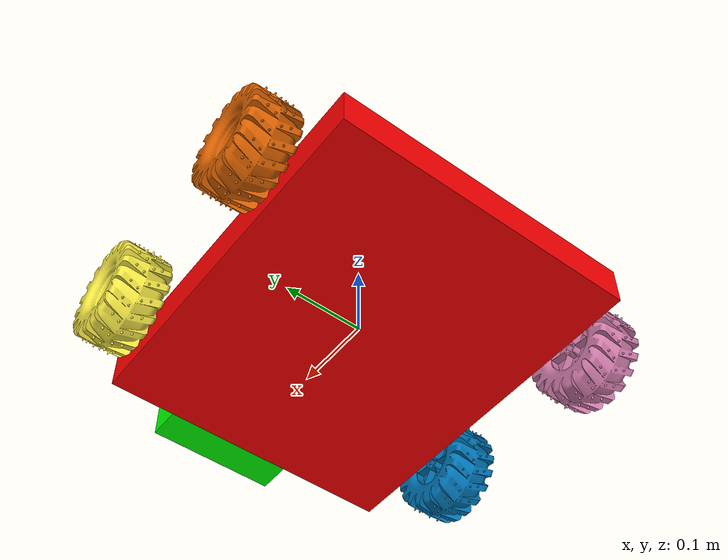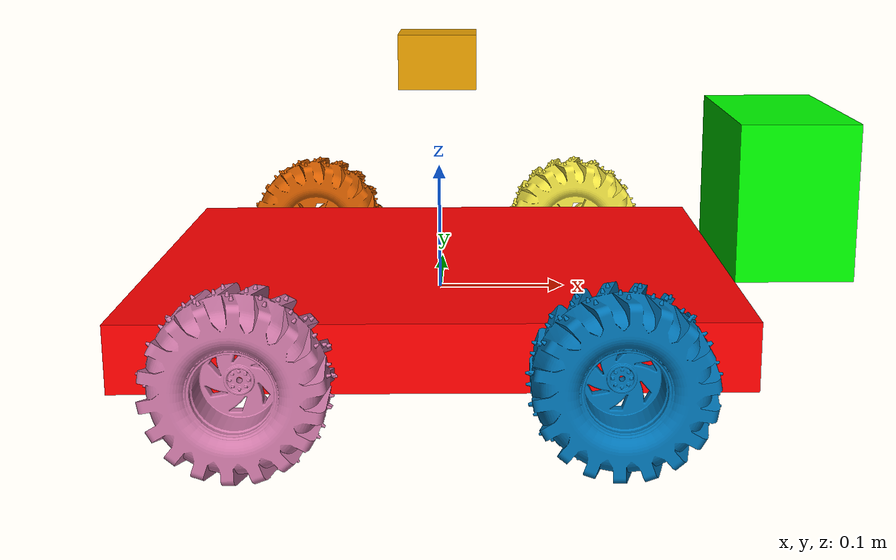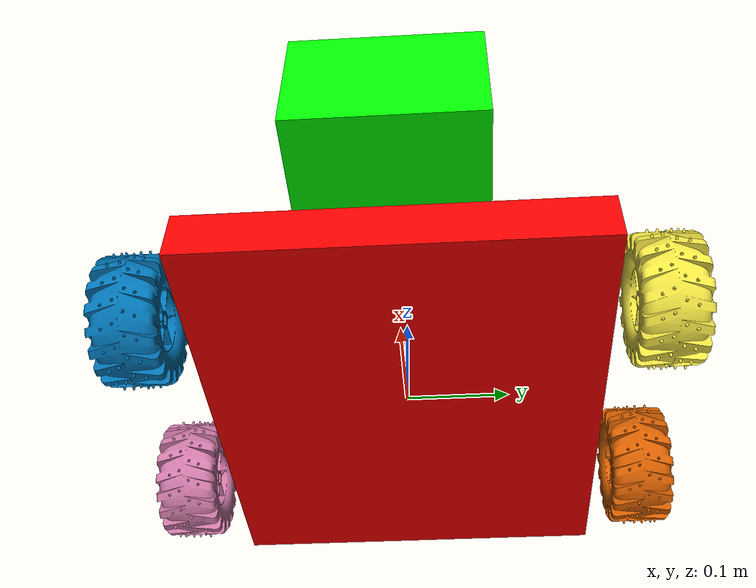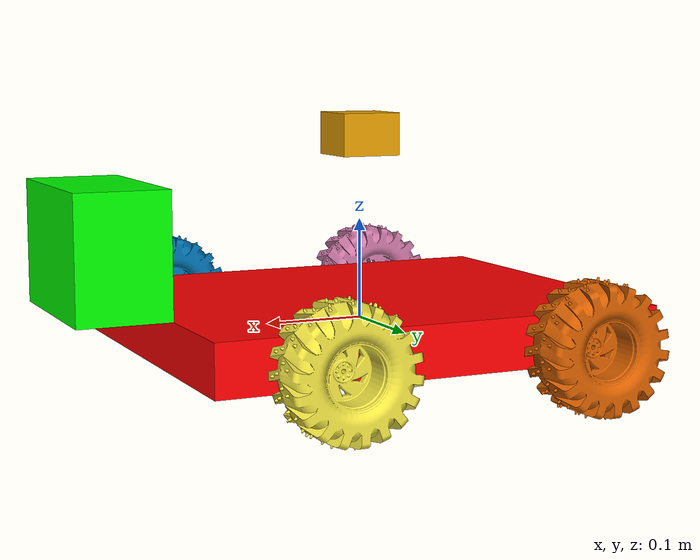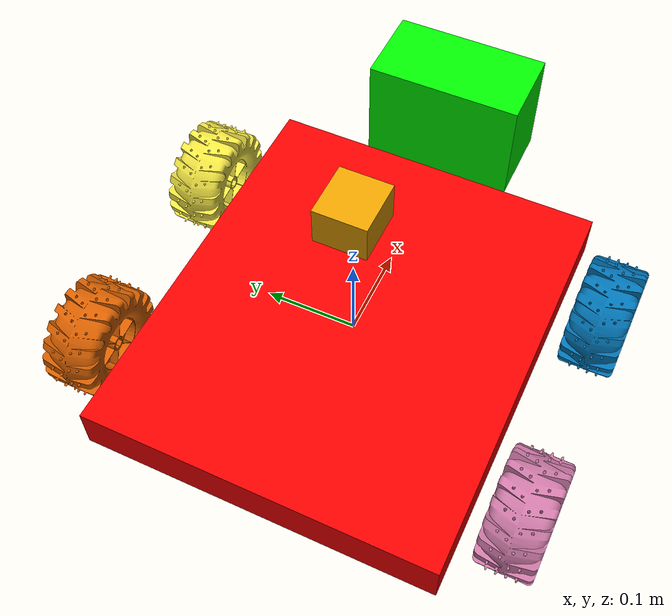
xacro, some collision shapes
<?xml version="1.0"?>
<robot xmlns:xacro="http://ros.org/wiki/xacro" name="SKD-1" >

    <!-- is_sim is true if we launch a Gazebo simulation
    and false if we are on real hardware -->
    <xacro:arg name="is_sim" default="true"/>

    <xacro:include filename="$(find skd1_description)/urdf/skd1_core.urdf.xacro" />

    <!-- Gazebo simulation  -->
    <xacro:if value="$(arg is_sim)">
        <!-- Use ros2_control -->
        <xacro:include filename="$(find skd1_description)/urdf/skd1_sim_ros2_control.urdf.xacro" />
        <xacro:include filename="$(find skd1_description)/urdf/skd1_sim_sensors.urdf.xacro" />
    </xacro:if>

    <!-- Hardware -->
    <xacro:unless value="$(arg is_sim)">
            <xacro:include filename="$(find skd1_description)/urdf/ros2_control.urdf.xacro" />
    </xacro:unless>

</robot>

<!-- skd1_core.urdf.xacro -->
<robot xmlns:xacro="http://www.ros.org/wiki/xacro">

    <xacro:include filename="$(find skd1_description)/urdf/inertial_macros.xacro" />
    <xacro:include filename="$(find skd1_description)/urdf/wheel.urdf.xacro" />

	<!--  Wheel distance between front and rear -->
	<xacro:property name="wheel_distance" value="0.25" />

	<!-- Wheel distance between left and right side -->
	<xacro:property name="wheel_separation" value="0.475" />

	<!-- Wheel properties -->
	<xacro:property name="wheel_mass" value="0.150" />
	<xacro:property name="wheel_radius" value="0.06" />
	<xacro:property name="wheel_width" value="0.06" />

	<!-- Chassis size -->
	<xacro:property name="chassis_x_size" value="0.45" />
	<xacro:property name="chassis_y_size" value="0.38" />
	<xacro:property name="chassis_z_size" value="0.05" />

	<!-- https://docs.ros.org/en/humble/Tutorials/Intermediate/URDF/Adding-Physical-and-Collision-Properties-to-a-URDF-Model.html -->

    <link name="base_link">

		<visual>
    		<origin xyz="0 0 0" rpy="0 0 0" />
			<geometry>
				<box size="${chassis_x_size} ${chassis_y_size} ${chassis_z_size}"/>
			</geometry>
			<material name="Red">
				<color rgba="${255/255} ${0/255} ${0/255} 1.0"/>
			</material>
		</visual>

		<collision>
			<origin xyz="0 0 0"/>
			<geometry>
				<box size="${chassis_x_size} ${chassis_y_size} ${chassis_z_size}"/>
			</geometry>
		</collision>

		<visual>
    		<origin xyz="${chassis_x_size/2 + 0.045} 0 ${chassis_z_size/2 + 0.06}" rpy="0 0 0" />
			<geometry>
				<box size="0.09 0.17 0.12"/>
			</geometry>
			<material name="Green">
				<color rgba="${0/255} ${255/255} ${0/255} 1.0"/>
			</material>
		</visual>

		<collision>
			<origin xyz="${chassis_x_size/2 + 0.045} 0 ${chassis_z_size/2 + 0.06}" rpy="0 0 0" />
			<geometry>
				<box size="0.09 0.17 0.12"/>
			</geometry>
		</collision>

    </link>

	<!-- Base footprint is on the ground under the robot -->
    <link name="base_footprint">
		<xacro:dummy_inertial />
	</link>

    <joint name="base_footprint_joint" type="fixed">
        <origin xyz="0 0 ${-wheel_radius}" rpy="0 0 0" />
        <parent link="base_link" />
        <child link="base_footprint" />
    </joint>

	<!-- Interial link stores the robot's inertial information -->
    <link name="inertial_link">
		<xacro:inertial_box mass="2.0" x="${chassis_x_size}" y="${chassis_y_size}" z="${chassis_z_size}">
            <origin xyz="0 0 0" rpy="0 0 0"/>
        </xacro:inertial_box>
    </link>

    <joint name="inertial_joint" type="fixed">
        <origin xyz="0 0 0" rpy="0 0 0" />
        <parent link="base_link" />
        <child link="inertial_link" />
    </joint>

	<!-- Wheel macros -->
	<xacro:skd1_wheel wheel_prefix="front_left">
		<origin xyz="${wheel_distance/2} ${wheel_separation/2} 0" rpy="0 0 0" />
	</xacro:skd1_wheel>

	<xacro:skd1_wheel wheel_prefix="front_right">
		<origin xyz="${wheel_distance/2} ${-wheel_separation/2} 0" rpy="0 0 0" />
	</xacro:skd1_wheel>

	<xacro:skd1_wheel wheel_prefix="rear_left">
		<origin xyz="${-wheel_distance/2} ${wheel_separation/2} 0" rpy="0 0 0" />
	</xacro:skd1_wheel>

	<xacro:skd1_wheel wheel_prefix="rear_right">
		<origin xyz="${-wheel_distance/2} ${-wheel_separation/2} 0" rpy="0 0 0" />
	</xacro:skd1_wheel>

    <!-- Sensors -->

	<!-- MTI630 IMU -->
	<link name="xsens_imu_link">
		<xacro:dummy_inertial />
	</link>

	<joint name="xsens_imu_joint" type="fixed">
		<parent link="base_link" />
		<child link="xsens_imu_link" />
		<origin xyz="0 0 0.05" rpy="0 0 0" />
	</joint>

	<!-- RPLidar S3 -->
	<link name="rplidar_s3_link">
		<xacro:dummy_inertial />
		<collision>
			<origin xyz="0 0 0" rpy="0 0 0"/>
			<geometry>
				<box size="0.06 0.056 0.042"/>
			</geometry>
		</collision>
		<visual>
			<origin xyz="0 0 0" rpy="${pi/2} 0 ${-pi/2}"/>
			<geometry>
				<mesh filename="file://$(find skd1_description)/meshes/rplidar_s3.stl"  scale="0.001 0.001 0.001"/>
			</geometry>
		</visual>
	</link>

	<joint name="rplidar_joint" type="fixed">
		<parent link="base_link"/>
		<child link="rplidar_s3_link"/>
		<origin xyz="0.0 0.0 ${chassis_z_size/2 + 0.16}" rpy="0 0 ${pi}"/>
	</joint>

	<link name="ardusimple_gps_link">
		<xacro:dummy_inertial />
	</link>

	<joint name="ardusimple_gps_joint" type="fixed">
		<parent link="base_link" />
		<child link="ardusimple_gps_link" />
		<origin xyz="0.0 -0.1 0.2" rpy="0 0 0" />
	</joint>

	<link name="m8n_gps_link">
		<xacro:dummy_inertial />
	</link>

	<joint name="m8n_gps_joint" type="fixed">
		<parent link="base_link" />
		<child link="m8n_gps_link" />
		<origin xyz="0.0 0.1 0.2" rpy="0 0 0" />
	</joint>

</robot>

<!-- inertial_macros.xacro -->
<robot xmlns:xacro="http://www.ros.org/wiki/xacro" >

    <!-- Specify some standard inertial calculations https://en.wikipedia.org/wiki/List_of_moments_of_inertia -->
    <!-- These make use of xacro's mathematical functionality -->

    <xacro:macro name="inertial_sphere" params="mass radius *origin">
        <inertial>
            <xacro:insert_block name="origin"/>
            <mass value="${mass}" />
            <inertia ixx="${(2/5) * mass * (radius*radius)}" ixy="0.0" ixz="0.0"
                    iyy="${(2/5) * mass * (radius*radius)}" iyz="0.0"
                    izz="${(2/5) * mass * (radius*radius)}" />
        </inertial>
    </xacro:macro>

    <xacro:macro name="inertial_box" params="mass x y z *origin">
        <inertial>
            <xacro:insert_block name="origin"/>
            <mass value="${mass}" />
            <inertia ixx="${(1/12) * mass * (y*y+z*z)}" ixy="0.0" ixz="0.0"
                    iyy="${(1/12) * mass * (x*x+z*z)}" iyz="0.0"
                    izz="${(1/12) * mass * (x*x+y*y)}" />
        </inertial>
    </xacro:macro>

    <xacro:macro name="inertial_cylinder" params="mass length radius *origin">
        <inertial>
            <xacro:insert_block name="origin"/>
            <mass value="${mass}" />
            <inertia ixx="${(1/12) * mass * (3*radius*radius + length*length)}" ixy="0.0" ixz="0.0"
                    iyy="${(1/12) * mass * (3*radius*radius + length*length)}" iyz="0.0"
                    izz="${(1/2) * mass * (radius*radius)}" />
        </inertial>
    </xacro:macro>

    <xacro:macro name="dummy_inertial">
        <inertial>
            <origin xyz="0 0 0" rpy="0 0 0"/>
            <mass value="0.001"/>
            <inertia ixx="0.00001" ixy="0" ixz="0"
                     iyy="0.00001" iyz="0"
                     izz="0.00001"/>
        </inertial>
    </xacro:macro>

</robot>

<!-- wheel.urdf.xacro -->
<robot xmlns:xacro="http://ros.org/wiki/xacro">
    <xacro:macro name="skd1_wheel" params="wheel_prefix *joint_pose">
        <xacro:property name="link_name" value="${wheel_prefix}_wheel_link" />
        <xacro:property name="joint_name" value="${wheel_prefix}_wheel_joint" />
        <xacro:property name="transmission_name" value="${wheel_prefix}_wheel_trans" />
        <xacro:property name="actuator_name" value="${wheel_prefix}_wheel_actuator" />

        <link name="${link_name}">
            <visual>
                <origin xyz="0 0 0" rpy="${pi/2} 0 0"/>
                <geometry>
                    <xacro:if value="${wheel_prefix == 'front_left'}">
                        <mesh filename="file://$(find skd1_description)/meshes/tires-dagu-120mm-l.stl"/>
                    </xacro:if>
                    <xacro:if value="${wheel_prefix == 'front_right'}">
                        <mesh filename="file://$(find skd1_description)/meshes/tires-dagu-120mm-r.stl"/>
                    </xacro:if>
                    <xacro:if value="${wheel_prefix == 'rear_left'}">
                        <mesh filename="file://$(find skd1_description)/meshes/tires-dagu-120mm-l.stl"/>
                    </xacro:if>
                    <xacro:if value="${wheel_prefix == 'rear_right'}">
                        <mesh filename="file://$(find skd1_description)/meshes/tires-dagu-120mm-r.stl"/>
                    </xacro:if>
                </geometry>
            </visual>
            <collision>
                <origin xyz="0 0 0" rpy="${pi/2} 0 0"/>
                <geometry>
                    <sphere radius="${wheel_radius}"/>
                </geometry>
            </collision>
            <xacro:inertial_cylinder mass="${wheel_mass}" length="${wheel_width}" radius="${wheel_radius}">
                <origin xyz="0 0 0" rpy="${pi/2} 0 0"/>
            </xacro:inertial_cylinder>

        </link>

        <gazebo reference="${link_name}">
            <visual>
                <material>
                    <ambient>0.175 0.175 0.175 1.0</ambient>
                    <diffuse>0.175 0.175 0.175 1.0</diffuse>
                    <specular>0.175 0.175 0.175 1.0</specular>
                </material>
            </visual>

        </gazebo>

        <joint name="${joint_name}" type="continuous">
            <parent link="base_link"/>
            <child link="${link_name}" />
            <xacro:insert_block name="joint_pose" />
            <axis xyz="0 1 0" rpy="0 0 0" />
        </joint>

    </xacro:macro>

</robot>
